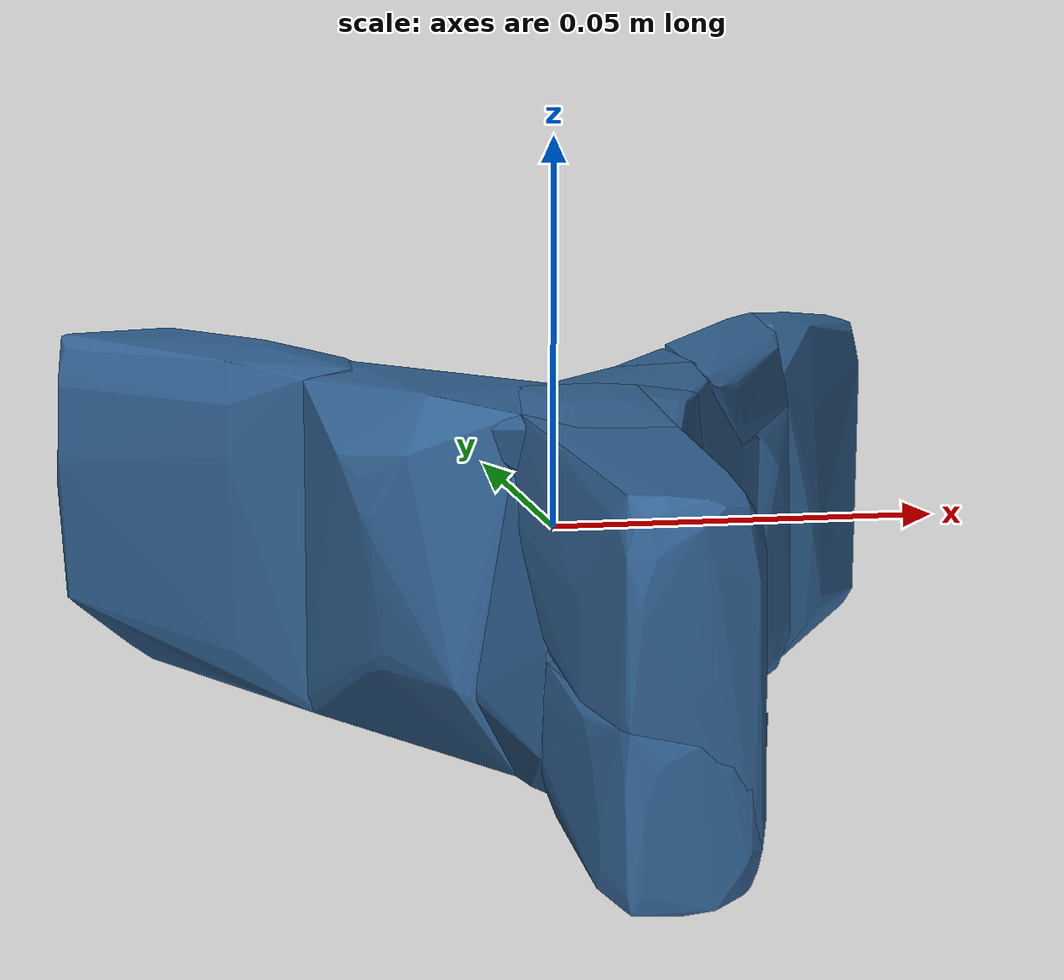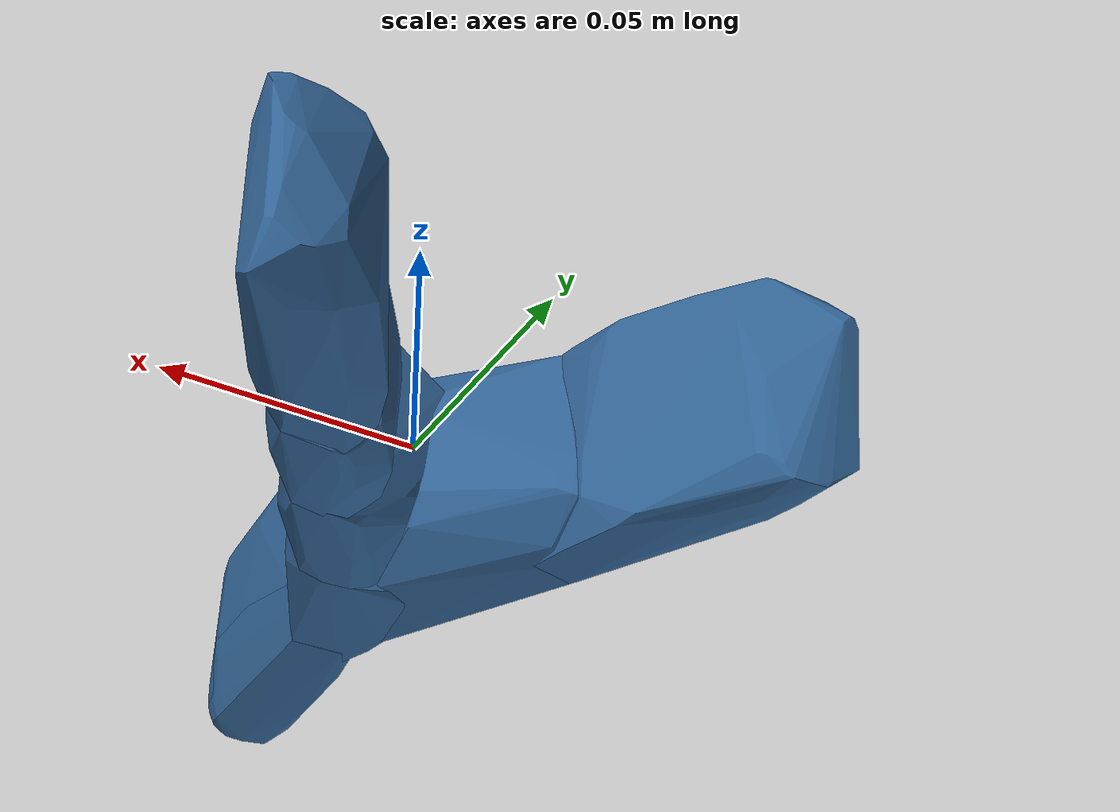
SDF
<?xml version='1.0' encoding='UTF-8'?>
<!-- This SDF was autogenerated by obj_to_drake_sdf.py -->
<sdf version="1.7">
  <model name="Y_shape">
    <link name="Y_shape">
      <inertial>
        <pose>0 0 0 0 0 0</pose>
        <mass>0.05</mass>
        <inertia>
          <ixx>8.6010681e-05</ixx>
          <iyy>3.9111688e-05</iyy>
          <izz>0.00010958103</izz>
          <ixy>-2.0278642e-06</ixy>
          <ixz>2.6419203e-07</ixz>
          <iyz>-5.9956138e-07</iyz>
        </inertia>
      </inertial>
      <visual name="convex_0">
        <pose>0 0 0 0 0 0</pose>
        <geometry>
          <mesh>
            <uri>Y_shape_convex_0.obj</uri>
          </mesh>
        </geometry>
        <material>
          <diffuse>0.19607843137254902 0.39215686274509803 0.5882352941176471 1</diffuse>
        </material>
      </visual>
      <collision name="convex_0_volume">
        <pose>0 0 0 0 0 0</pose>
        <geometry>
          <mesh>
            <uri>Y_shape_convex_0.obj</uri>
          </mesh>
        </geometry>
        <drake:proximity_properties xmlns:drake="uri:drake">
          <drake:compliant_hydroelastic/>
          <drake:hydroelastic_modulus> 3.0e7 </drake:hydroelastic_modulus>
          <drake:mesh_resolution_hint> 0.02 </drake:mesh_resolution_hint>
          <drake:hunt_crossley_dissipation>10</drake:hunt_crossley_dissipation>
          <drake:mu_dynamic>0.3</drake:mu_dynamic>
        </drake:proximity_properties>
      </collision>
      <visual name="convex_1">
        <pose>0 0 0 0 0 0</pose>
        <geometry>
          <mesh>
            <uri>Y_shape_convex_1.obj</uri>
          </mesh>
        </geometry>
        <material>
          <diffuse>0.19607843137254902 0.39215686274509803 0.5882352941176471 1</diffuse>
        </material>
      </visual>
      <collision name="convex_1_volume">
        <pose>0 0 0 0 0 0</pose>
        <geometry>
          <mesh>
            <uri>Y_shape_convex_1.obj</uri>
          </mesh>
        </geometry>
        <drake:proximity_properties xmlns:drake="uri:drake">
          <drake:compliant_hydroelastic/>
          <drake:hydroelastic_modulus> 3.0e7 </drake:hydroelastic_modulus>
          <drake:mesh_resolution_hint> 0.02 </drake:mesh_resolution_hint>
          <drake:hunt_crossley_dissipation>10</drake:hunt_crossley_dissipation>
          <drake:mu_dynamic>0.3</drake:mu_dynamic>
        </drake:proximity_properties>
      </collision>
      <visual name="convex_2">
        <pose>0 0 0 0 0 0</pose>
        <geometry>
          <mesh>
            <uri>Y_shape_convex_2.obj</uri>
          </mesh>
        </geometry>
        <material>
          <diffuse>0.19607843137254902 0.39215686274509803 0.5882352941176471 1</diffuse>
        </material>
      </visual>
      <collision name="convex_2_volume">
        <pose>0 0 0 0 0 0</pose>
        <geometry>
          <mesh>
            <uri>Y_shape_convex_2.obj</uri>
          </mesh>
        </geometry>
        <drake:proximity_properties xmlns:drake="uri:drake">
          <drake:compliant_hydroelastic/>
          <drake:hydroelastic_modulus> 3.0e7 </drake:hydroelastic_modulus>
          <drake:mesh_resolution_hint> 0.02 </drake:mesh_resolution_hint>
          <drake:hunt_crossley_dissipation>10</drake:hunt_crossley_dissipation>
          <drake:mu_dynamic>0.3</drake:mu_dynamic>
        </drake:proximity_properties>
      </collision>
      <visual name="convex_3">
        <pose>0 0 0 0 0 0</pose>
        <geometry>
          <mesh>
            <uri>Y_shape_convex_3.obj</uri>
          </mesh>
        </geometry>
        <material>
          <diffuse>0.19607843137254902 0.39215686274509803 0.5882352941176471 1</diffuse>
        </material>
      </visual>
      <collision name="convex_3_volume">
        <pose>0 0 0 0 0 0</pose>
        <geometry>
          <mesh>
            <uri>Y_shape_convex_3.obj</uri>
          </mesh>
        </geometry>
        <drake:proximity_properties xmlns:drake="uri:drake">
          <drake:compliant_hydroelastic/>
          <drake:hydroelastic_modulus> 3.0e7 </drake:hydroelastic_modulus>
          <drake:mesh_resolution_hint> 0.02 </drake:mesh_resolution_hint>
          <drake:hunt_crossley_dissipation>10</drake:hunt_crossley_dissipation>
          <drake:mu_dynamic>0.3</drake:mu_dynamic>
        </drake:proximity_properties>
      </collision>
      <visual name="convex_4">
        <pose>0 0 0 0 0 0</pose>
        <geometry>
          <mesh>
            <uri>Y_shape_convex_4.obj</uri>
          </mesh>
        </geometry>
        <material>
          <diffuse>0.19607843137254902 0.39215686274509803 0.5882352941176471 1</diffuse>
        </material>
      </visual>
      <collision name="convex_4_volume">
        <pose>0 0 0 0 0 0</pose>
        <geometry>
          <mesh>
            <uri>Y_shape_convex_4.obj</uri>
          </mesh>
        </geometry>
        <drake:proximity_properties xmlns:drake="uri:drake">
          <drake:compliant_hydroelastic/>
          <drake:hydroelastic_modulus> 3.0e7 </drake:hydroelastic_modulus>
          <drake:mesh_resolution_hint> 0.02 </drake:mesh_resolution_hint>
          <drake:hunt_crossley_dissipation>10</drake:hunt_crossley_dissipation>
          <drake:mu_dynamic>0.3</drake:mu_dynamic>
        </drake:proximity_properties>
      </collision>
      <visual name="convex_5">
        <pose>0 0 0 0 0 0</pose>
        <geometry>
          <mesh>
            <uri>Y_shape_convex_5.obj</uri>
          </mesh>
        </geometry>
        <material>
          <diffuse>0.19607843137254902 0.39215686274509803 0.5882352941176471 1</diffuse>
        </material>
      </visual>
      <collision name="convex_5_volume">
        <pose>0 0 0 0 0 0</pose>
        <geometry>
          <mesh>
            <uri>Y_shape_convex_5.obj</uri>
          </mesh>
        </geometry>
        <drake:proximity_properties xmlns:drake="uri:drake">
          <drake:compliant_hydroelastic/>
          <drake:hydroelastic_modulus> 3.0e7 </drake:hydroelastic_modulus>
          <drake:mesh_resolution_hint> 0.02 </drake:mesh_resolution_hint>
          <drake:hunt_crossley_dissipation>10</drake:hunt_crossley_dissipation>
          <drake:mu_dynamic>0.3</drake:mu_dynamic>
        </drake:proximity_properties>
      </collision>
      <visual name="convex_6">
        <pose>0 0 0 0 0 0</pose>
        <geometry>
          <mesh>
            <uri>Y_shape_convex_6.obj</uri>
          </mesh>
        </geometry>
        <material>
          <diffuse>0.19607843137254902 0.39215686274509803 0.5882352941176471 1</diffuse>
        </material>
      </visual>
      <collision name="convex_6_volume">
        <pose>0 0 0 0 0 0</pose>
        <geometry>
          <mesh>
            <uri>Y_shape_convex_6.obj</uri>
          </mesh>
        </geometry>
        <drake:proximity_properties xmlns:drake="uri:drake">
          <drake:compliant_hydroelastic/>
          <drake:hydroelastic_modulus> 3.0e7 </drake:hydroelastic_modulus>
          <drake:mesh_resolution_hint> 0.02 </drake:mesh_resolution_hint>
          <drake:hunt_crossley_dissipation>10</drake:hunt_crossley_dissipation>
          <drake:mu_dynamic>0.3</drake:mu_dynamic>
        </drake:proximity_properties>
      </collision>
      <visual name="convex_7">
        <pose>0 0 0 0 0 0</pose>
        <geometry>
          <mesh>
            <uri>Y_shape_convex_7.obj</uri>
          </mesh>
        </geometry>
        <material>
          <diffuse>0.19607843137254902 0.39215686274509803 0.5882352941176471 1</diffuse>
        </material>
      </visual>
      <collision name="convex_7_volume">
        <pose>0 0 0 0 0 0</pose>
        <geometry>
          <mesh>
            <uri>Y_shape_convex_7.obj</uri>
          </mesh>
        </geometry>
        <drake:proximity_properties xmlns:drake="uri:drake">
          <drake:compliant_hydroelastic/>
          <drake:hydroelastic_modulus> 3.0e7 </drake:hydroelastic_modulus>
          <drake:mesh_resolution_hint> 0.02 </drake:mesh_resolution_hint>
          <drake:hunt_crossley_dissipation>10</drake:hunt_crossley_dissipation>
          <drake:mu_dynamic>0.3</drake:mu_dynamic>
        </drake:proximity_properties>
      </collision>
      <visual name="convex_8">
        <pose>0 0 0 0 0 0</pose>
        <geometry>
          <mesh>
            <uri>Y_shape_convex_8.obj</uri>
          </mesh>
        </geometry>
        <material>
          <diffuse>0.19607843137254902 0.39215686274509803 0.5882352941176471 1</diffuse>
        </material>
      </visual>
      <collision name="convex_8_volume">
        <pose>0 0 0 0 0 0</pose>
        <geometry>
          <mesh>
            <uri>Y_shape_convex_8.obj</uri>
          </mesh>
        </geometry>
        <drake:proximity_properties xmlns:drake="uri:drake">
          <drake:compliant_hydroelastic/>
          <drake:hydroelastic_modulus> 3.0e7 </drake:hydroelastic_modulus>
          <drake:mesh_resolution_hint> 0.02 </drake:mesh_resolution_hint>
          <drake:hunt_crossley_dissipation>10</drake:hunt_crossley_dissipation>
          <drake:mu_dynamic>0.3</drake:mu_dynamic>
        </drake:proximity_properties>
      </collision>
      <visual name="convex_9">
        <pose>0 0 0 0 0 0</pose>
        <geometry>
          <mesh>
            <uri>Y_shape_convex_9.obj</uri>
          </mesh>
        </geometry>
        <material>
          <diffuse>0.19607843137254902 0.39215686274509803 0.5882352941176471 1</diffuse>
        </material>
      </visual>
      <collision name="convex_9_volume">
        <pose>0 0 0 0 0 0</pose>
        <geometry>
          <mesh>
            <uri>Y_shape_convex_9.obj</uri>
          </mesh>
        </geometry>
        <drake:proximity_properties xmlns:drake="uri:drake">
          <drake:compliant_hydroelastic/>
          <drake:hydroelastic_modulus> 3.0e7 </drake:hydroelastic_modulus>
          <drake:mesh_resolution_hint> 0.02 </drake:mesh_resolution_hint>
          <drake:hunt_crossley_dissipation>10</drake:hunt_crossley_dissipation>
          <drake:mu_dynamic>0.3</drake:mu_dynamic>
        </drake:proximity_properties>
      </collision>
    </link>
  </model>
</sdf>
